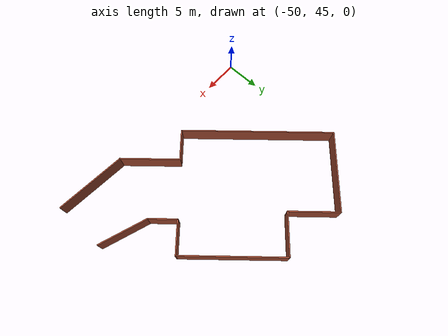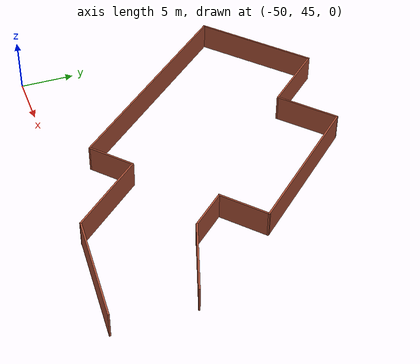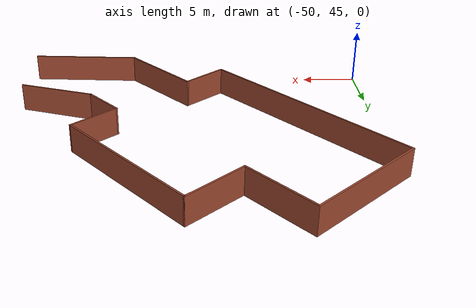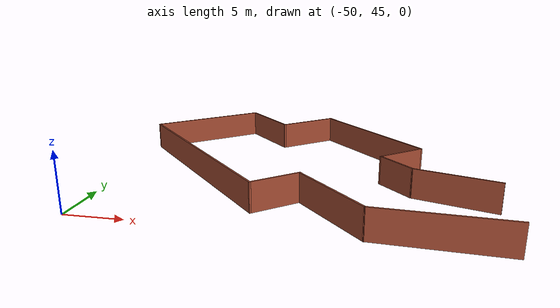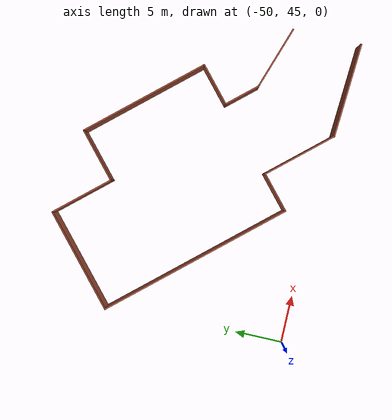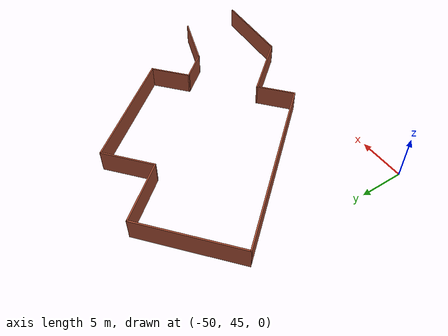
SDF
<sdf version="1.7">
 <world name="default">
  <model name="parking_5">
   <pose>-25.9065 69.2029 0 0 0 -0.06442</pose>
   <link name="Wall_116">
    <collision name="Wall_116_Collision">
     <geometry><box><size>11.5 0.15 2.5</size></box></geometry>
     <pose>0 0 1.25 0 -0 0</pose>
    </collision>
    <visual name="Wall_116_Visual">
     <pose>0 0 1.25 0 -0 0</pose>
     <geometry><box><size>11.5 0.15 2.5</size></box></geometry>
     <material>
      <script><uri>file://media/materials/scripts/gazebo.material</uri><name>Gazebo/Bricks</name></script>
      <ambient>1 1 1 1</ambient>
     </material>
     <meta><layer>0</layer></meta>
    </visual>
    <pose>-19.8928 -2.91219 0 0 -0 -2.35619</pose>
   </link>
   <link name="Wall_117">
    <collision name="Wall_117_Collision">
     <geometry><box><size>21.25 0.15 2.5</size></box></geometry>
     <pose>0 0 1.25 0 -0 0</pose>
    </collision>
    <visual name="Wall_117_Visual">
     <pose>0 0 1.25 0 -0 0</pose>
     <geometry><box><size>21.25 0.15 2.5</size></box></geometry>
     <material>
      <script><uri>file://media/materials/scripts/gazebo.material</uri><name>Gazebo/Bricks</name></script>
      <ambient>1 1 1 1</ambient>
     </material>
     <meta><layer>0</layer></meta>
    </visual>
    <pose>-16.4456 -14.385 0 0 -0 -0.785398</pose>
   </link>
   <link name="Wall_118">
    <collision name="Wall_118_Collision">
     <geometry><box><size>4.5 0.15 2.5</size></box></geometry>
     <pose>0 0 1.25 0 -0 0</pose>
    </collision>
    <visual name="Wall_118_Visual">
     <pose>0 0 1.25 0 -0 0</pose>
     <geometry><box><size>4.5 0.15 2.5</size></box></geometry>
     <material>
      <script><uri>file://media/materials/scripts/gazebo.material</uri><name>Gazebo/Bricks</name></script>
      <ambient>1 1 1 1</ambient>
     </material>
     <meta><layer>0</layer></meta>
    </visual>
    <pose>-7.44772 -20.307 0 0 -0 0.785398</pose>
   </link>
   <link name="Wall_119">
    <collision name="Wall_119_Collision">
     <geometry><box><size>8.25 0.15 2.5</size></box></geometry>
     <pose>0 0 1.25 0 -0 0</pose>
    </collision>
    <visual name="Wall_119_Visual">
     <pose>0 0 1.25 0 -0 0</pose>
     <geometry><box><size>8.25 0.15 2.5</size></box></geometry>
     <material>
      <script><uri>file://media/materials/scripts/gazebo.material</uri><name>Gazebo/Bricks</name></script>
      <ambient>1 1 1 1</ambient>
     </material>
     <meta><layer>0</layer></meta>
    </visual>
    <pose>-3.04598 -21.6328 0 0 -0 -0.785398</pose>
   </link>
   <link name="Wall_120">
    <collision name="Wall_120_Collision">
     <geometry><box><size>10 0.15 2.5</size></box></geometry>
     <pose>0 0 1.25 0 -0 0</pose>
    </collision>
    <visual name="Wall_120_Visual">
     <pose>0 0 1.25 0 -0 0</pose>
     <geometry><box><size>10 0.15 2.5</size></box></geometry>
     <material>
      <script><uri>file://media/materials/scripts/gazebo.material</uri><name>Gazebo/Bricks</name></script>
      <ambient>1 1 1 1</ambient>
     </material>
     <meta><layer>0</layer></meta>
    </visual>
    <pose>4.7428 -24.4966 0 0 -0 0</pose>
   </link>
   <link name="Wall_122">
    <collision name="Wall_122_Collision">
     <geometry><box><size>7 0.15 2.5</size></box></geometry>
     <pose>0 0 1.25 0 -0 0</pose>
    </collision>
    <visual name="Wall_122_Visual">
     <pose>0 0 1.25 0 -0 0</pose>
     <geometry><box><size>7 0.15 2.5</size></box></geometry>
     <material>
      <script><uri>file://media/materials/scripts/gazebo.material</uri><name>Gazebo/Bricks</name></script>
      <ambient>1 1 1 1</ambient>
     </material>
     <meta><layer>0</layer></meta>
    </visual>
    <pose>-13.4581 -1.3212 0 0 -0 -0.785398</pose>
   </link>
   <link name="Wall_123">
    <collision name="Wall_123_Collision">
     <geometry><box><size>6 0.15 2.5</size></box></geometry>
     <pose>0 0 1.25 0 -0 0</pose>
    </collision>
    <visual name="Wall_123_Visual">
     <pose>0 0 1.25 0 -0 0</pose>
     <geometry><box><size>6 0.15 2.5</size></box></geometry>
     <material>
      <script><uri>file://media/materials/scripts/gazebo.material</uri><name>Gazebo/Bricks</name></script>
      <ambient>1 1 1 1</ambient>
     </material>
     <meta><layer>0</layer></meta>
    </visual>
    <pose>-8.968 -1.67475 0 0 -0 0.785398</pose>
   </link>
   <link name="Wall_124">
    <collision name="Wall_124_Collision">
     <geometry><box><size>14.25 0.15 2.5</size></box></geometry>
     <pose>0 0 1.25 0 -0 0</pose>
    </collision>
    <visual name="Wall_124_Visual">
     <pose>0 0 1.25 0 -0 0</pose>
     <geometry><box><size>14.25 0.15 2.5</size></box></geometry>
     <material>
      <script><uri>file://media/materials/scripts/gazebo.material</uri><name>Gazebo/Bricks</name></script>
      <ambient>1 1 1 1</ambient>
     </material>
     <meta><layer>0</layer></meta>
    </visual>
    <pose>-1.91461 -4.59157 0 0 -0 -0.785398</pose>
   </link>
   <link name="Wall_125">
    <collision name="Wall_125_Collision">
     <geometry><box><size>4.75 0.15 2.5</size></box></geometry>
     <pose>0 0 1.25 0 -0 0</pose>
    </collision>
    <visual name="Wall_125_Visual">
     <pose>0 0 1.25 0 -0 0</pose>
     <geometry><box><size>4.75 0.15 2.5</size></box></geometry>
     <material>
      <script><uri>file://media/materials/scripts/gazebo.material</uri><name>Gazebo/Bricks</name></script>
      <ambient>1 1 1 1</ambient>
     </material>
     <meta><layer>0</layer></meta>
    </visual>
    <pose>1.44415 -11.203 0 0 -0 -2.35619</pose>
   </link>
   <link name="Wall_131">
    <collision name="Wall_131_Collision">
     <geometry><box><size>4 0.15 2.5</size></box></geometry>
     <pose>0 0 1.25 0 -0 0</pose>
    </collision>
    <visual name="Wall_131_Visual">
     <pose>0 0 1.25 0 -0 0</pose>
     <geometry><box><size>4 0.15 2.5</size></box></geometry>
     <material>
      <script><uri>file://media/materials/scripts/gazebo.material</uri><name>Gazebo/Bricks</name></script>
      <ambient>1 1 1 1</ambient>
     </material>
     <meta><layer>0</layer></meta>
    </visual>
    <pose>1.17899 -14.1905 0 0 -0 -0.785398</pose>
   </link>
   <link name="Wall_132">
    <collision name="Wall_132_Collision">
     <geometry><box><size>7 0.15 2.5</size></box></geometry>
     <pose>0 0 1.25 0 -0 0</pose>
    </collision>
    <visual name="Wall_132_Visual">
     <pose>0 0 1.25 0 -0 0</pose>
     <geometry><box><size>7 0.15 2.5</size></box></geometry>
     <material>
      <script><uri>file://media/materials/scripts/gazebo.material</uri><name>Gazebo/Bricks</name></script>
      <ambient>1 1 1 1</ambient>
     </material>
     <meta><layer>0</layer></meta>
    </visual>
    <pose>5.84846 -16.4382 0 0 -0 -0.261799</pose>
   </link>
   <static>1</static>
  </model>
 </world>
</sdf>
